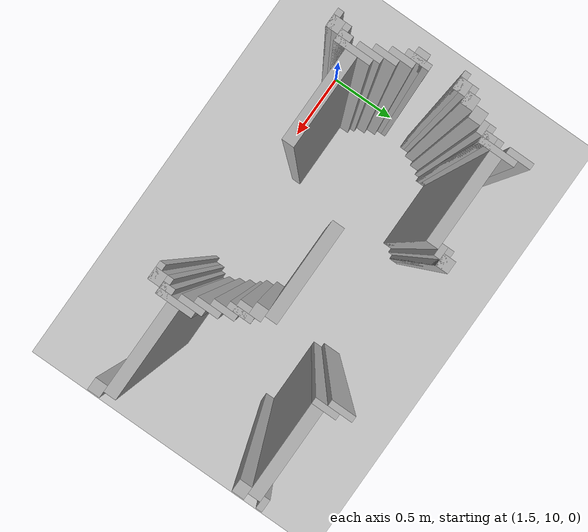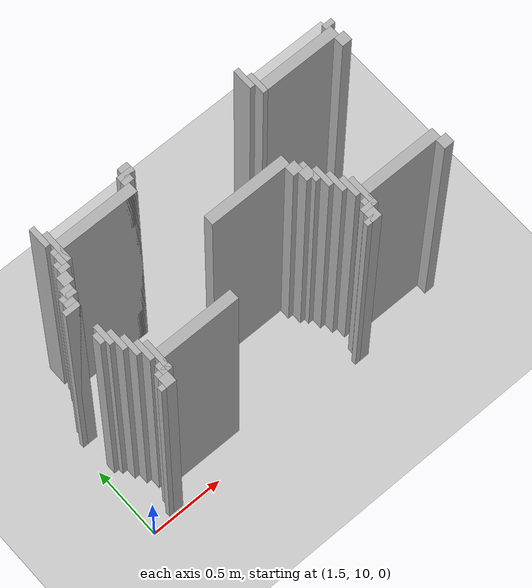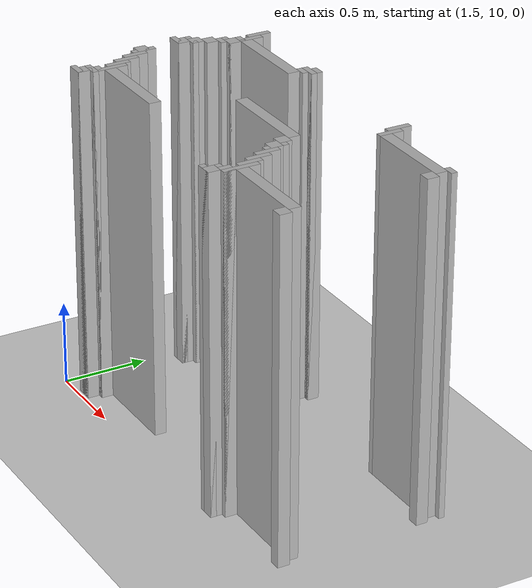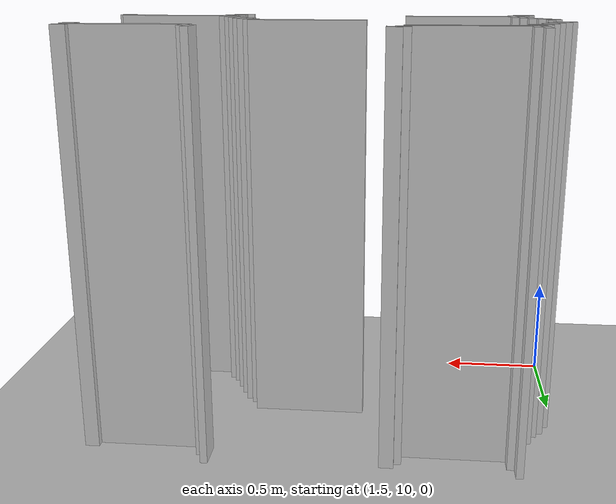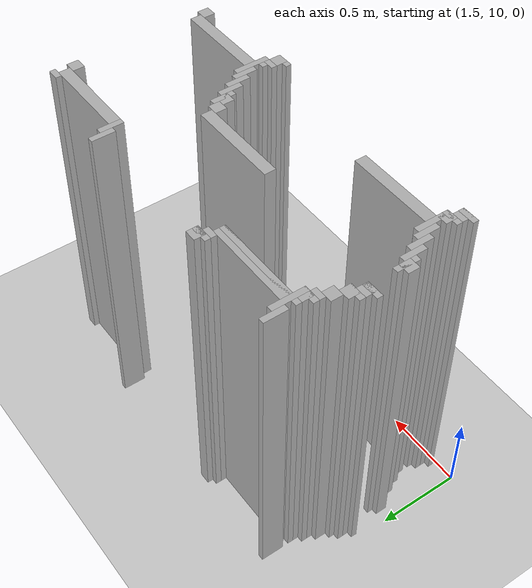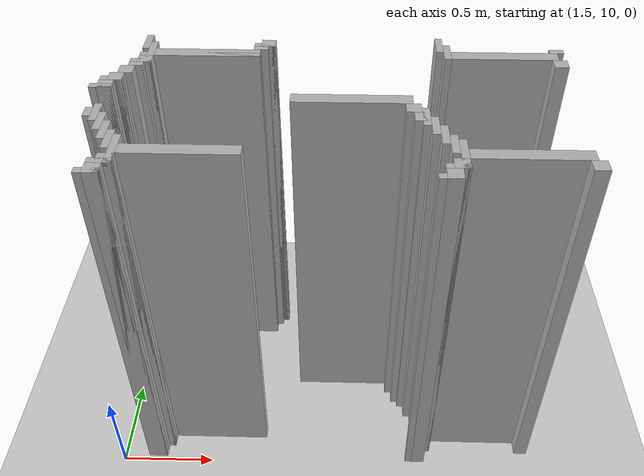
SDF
<sdf version="1.6">
 <world name="slam_world">
  <model name="ground_plane">
   <static>true</static>
   <link name="link">
    <collision name="collision">
     <geometry><plane><normal>0 0 1</normal><size>100 100</size></plane></geometry>
    </collision>
    <visual name="visual">
     <geometry><plane><normal>0 0 1</normal><size>100 100</size></plane></geometry>
     <material>
      <ambient>0.8 0.8 0.8 1</ambient>
      <diffuse>0.8 0.8 0.8 1</diffuse>
      <specular>0.8 0.8 0.8 1</specular>
     </material>
    </visual>
   </link>
  </model>
  <model name="wall_2127">
   <static>true</static>
   <pose>1.722737819025522 11.1368909512761 1.0 0 0 0</pose>
   <link name="link">
    <collision name="collision">
     <geometry><box><size>0.03480278422273782 0.13921113689095127 2.0</size></box></geometry>
    </collision>
    <visual name="visual">
     <geometry><box><size>0.03480278422273782 0.13921113689095127 2.0</size></box></geometry>
     <material><ambient>0.5 0.5 0.5 1</ambient><diffuse>0.7 0.7 0.7 1</diffuse></material>
    </visual>
   </link>
  </model>
  <model name="wall_2129">
   <static>true</static>
   <pose>3.1844547563805103 11.1368909512761 1.0 0 0 0</pose>
   <link name="link">
    <collision name="collision">
     <geometry><box><size>0.03480278422273782 0.13921113689095127 2.0</size></box></geometry>
    </collision>
    <visual name="visual">
     <geometry><box><size>0.03480278422273782 0.13921113689095127 2.0</size></box></geometry>
     <material><ambient>0.5 0.5 0.5 1</ambient><diffuse>0.7 0.7 0.7 1</diffuse></material>
    </visual>
   </link>
  </model>
  <model name="wall_2143">
   <static>true</static>
   <pose>2.331786542923434 11.1368909512761 1.0 0 0 0</pose>
   <link name="link">
    <collision name="collision">
     <geometry><box><size>0.06960556844547564 0.06960556844547564 2.0</size></box></geometry>
    </collision>
    <visual name="visual">
     <geometry><box><size>0.06960556844547564 0.06960556844547564 2.0</size></box></geometry>
     <material><ambient>0.5 0.5 0.5 1</ambient><diffuse>0.7 0.7 0.7 1</diffuse></material>
    </visual>
   </link>
  </model>
  <model name="wall_2151">
   <static>true</static>
   <pose>1.75754060324826 11.032482598607888 1.0 0 0 0</pose>
   <link name="link">
    <collision name="collision">
     <geometry><box><size>0.03480278422273782 0.2088167053364269 2.0</size></box></geometry>
    </collision>
    <visual name="visual">
     <geometry><box><size>0.03480278422273782 0.2088167053364269 2.0</size></box></geometry>
     <material><ambient>0.5 0.5 0.5 1</ambient><diffuse>0.7 0.7 0.7 1</diffuse></material>
    </visual>
   </link>
  </model>
  <model name="wall_2152">
   <static>true</static>
   <pose>2.3143851508120648 11.119489559164732 1.0 0 0 0</pose>
   <link name="link">
    <collision name="collision">
     <geometry><box><size>0.10440835266821345 0.03480278422273782 2.0</size></box></geometry>
    </collision>
    <visual name="visual">
     <geometry><box><size>0.10440835266821345 0.03480278422273782 2.0</size></box></geometry>
     <material><ambient>0.5 0.5 0.5 1</ambient><diffuse>0.7 0.7 0.7 1</diffuse></material>
    </visual>
   </link>
  </model>
  <model name="wall_2153">
   <static>true</static>
   <pose>3.219257540603248 11.067285382830626 1.0 0 0 0</pose>
   <link name="link">
    <collision name="collision">
     <geometry><box><size>0.03480278422273782 0.13921113689095127 2.0</size></box></geometry>
    </collision>
    <visual name="visual">
     <geometry><box><size>0.03480278422273782 0.13921113689095127 2.0</size></box></geometry>
     <material><ambient>0.5 0.5 0.5 1</ambient><diffuse>0.7 0.7 0.7 1</diffuse></material>
    </visual>
   </link>
  </model>
  <model name="wall_2167">
   <static>true</static>
   <pose>2.296983758700696 11.084686774941995 1.0 0 0 0</pose>
   <link name="link">
    <collision name="collision">
     <geometry><box><size>0.06960556844547564 0.03480278422273782 2.0</size></box></geometry>
    </collision>
    <visual name="visual">
     <geometry><box><size>0.06960556844547564 0.03480278422273782 2.0</size></box></geometry>
     <material><ambient>0.5 0.5 0.5 1</ambient><diffuse>0.7 0.7 0.7 1</diffuse></material>
    </visual>
   </link>
  </model>
  <model name="wall_2168">
   <static>true</static>
   <pose>3.7587006960556844 11.084686774941995 1.0 0 0 0</pose>
   <link name="link">
    <collision name="collision">
     <geometry><box><size>0.06960556844547564 0.03480278422273782 2.0</size></box></geometry>
    </collision>
    <visual name="visual">
     <geometry><box><size>0.06960556844547564 0.03480278422273782 2.0</size></box></geometry>
     <material><ambient>0.5 0.5 0.5 1</ambient><diffuse>0.7 0.7 0.7 1</diffuse></material>
    </visual>
   </link>
  </model>
  <model name="wall_2175">
   <static>true</static>
   <pose>2.0359628770301623 11.032482598607888 1.0 0 0 0</pose>
   <link name="link">
    <collision name="collision">
     <geometry><box><size>0.5220417633410672 0.06960556844547564 2.0</size></box></geometry>
    </collision>
    <visual name="visual">
     <geometry><box><size>0.5220417633410672 0.06960556844547564 2.0</size></box></geometry>
     <material><ambient>0.5 0.5 0.5 1</ambient><diffuse>0.7 0.7 0.7 1</diffuse></material>
    </visual>
   </link>
  </model>
  <model name="wall_2176">
   <static>true</static>
   <pose>3.4976798143851506 11.032482598607888 1.0 0 0 0</pose>
   <link name="link">
    <collision name="collision">
     <geometry><box><size>0.5220417633410672 0.06960556844547564 2.0</size></box></geometry>
    </collision>
    <visual name="visual">
     <geometry><box><size>0.5220417633410672 0.06960556844547564 2.0</size></box></geometry>
     <material><ambient>0.5 0.5 0.5 1</ambient><diffuse>0.7 0.7 0.7 1</diffuse></material>
    </visual>
   </link>
  </model>
  <model name="wall_2187">
   <static>true</static>
   <pose>2.0011600928074245 11.01508120649652 1.0 0 0 0</pose>
   <link name="link">
    <collision name="collision">
     <geometry><box><size>0.5916473317865429 0.03480278422273782 2.0</size></box></geometry>
    </collision>
    <visual name="visual">
     <geometry><box><size>0.5916473317865429 0.03480278422273782 2.0</size></box></geometry>
     <material><ambient>0.5 0.5 0.5 1</ambient><diffuse>0.7 0.7 0.7 1</diffuse></material>
    </visual>
   </link>
  </model>
  <model name="wall_2199">
   <static>true</static>
   <pose>1.740139211136891 10.962877030162412 1.0 0 0 0</pose>
   <link name="link">
    <collision name="collision">
     <geometry><box><size>0.06960556844547564 0.06960556844547564 2.0</size></box></geometry>
    </collision>
    <visual name="visual">
     <geometry><box><size>0.06960556844547564 0.06960556844547564 2.0</size></box></geometry>
     <material><ambient>0.5 0.5 0.5 1</ambient><diffuse>0.7 0.7 0.7 1</diffuse></material>
    </visual>
   </link>
  </model>
  <model name="wall_2200">
   <static>true</static>
   <pose>3.7587006960556844 10.962877030162412 1.0 0 0 0</pose>
   <link name="link">
    <collision name="collision">
     <geometry><box><size>0.06960556844547564 0.06960556844547564 2.0</size></box></geometry>
    </collision>
    <visual name="visual">
     <geometry><box><size>0.06960556844547564 0.06960556844547564 2.0</size></box></geometry>
     <material><ambient>0.5 0.5 0.5 1</ambient><diffuse>0.7 0.7 0.7 1</diffuse></material>
    </visual>
   </link>
  </model>
  <model name="wall_2211">
   <static>true</static>
   <pose>1.722737819025522 10.945475638051043 1.0 0 0 0</pose>
   <link name="link">
    <collision name="collision">
     <geometry><box><size>0.10440835266821345 0.03480278422273782 2.0</size></box></geometry>
    </collision>
    <visual name="visual">
     <geometry><box><size>0.10440835266821345 0.03480278422273782 2.0</size></box></geometry>
     <material><ambient>0.5 0.5 0.5 1</ambient><diffuse>0.7 0.7 0.7 1</diffuse></material>
    </visual>
   </link>
  </model>
  <model name="wall_2223">
   <static>true</static>
   <pose>1.705336426914153 10.910672853828306 1.0 0 0 0</pose>
   <link name="link">
    <collision name="collision">
     <geometry><box><size>0.06960556844547564 0.03480278422273782 2.0</size></box></geometry>
    </collision>
    <visual name="visual">
     <geometry><box><size>0.06960556844547564 0.03480278422273782 2.0</size></box></geometry>
     <material><ambient>0.5 0.5 0.5 1</ambient><diffuse>0.7 0.7 0.7 1</diffuse></material>
    </visual>
   </link>
  </model>
  <model name="wall_2230">
   <static>true</static>
   <pose>1.6705336426914152 10.8584686774942 1.0 0 0 0</pose>
   <link name="link">
    <collision name="collision">
     <geometry><box><size>0.06960556844547564 0.06960556844547564 2.0</size></box></geometry>
    </collision>
    <visual name="visual">
     <geometry><box><size>0.06960556844547564 0.06960556844547564 2.0</size></box></geometry>
     <material><ambient>0.5 0.5 0.5 1</ambient><diffuse>0.7 0.7 0.7 1</diffuse></material>
    </visual>
   </link>
  </model>
  <model name="wall_2242">
   <static>true</static>
   <pose>1.6357308584686774 10.788863109048723 1.0 0 0 0</pose>
   <link name="link">
    <collision name="collision">
     <geometry><box><size>0.06960556844547564 0.06960556844547564 2.0</size></box></geometry>
    </collision>
    <visual name="visual">
     <geometry><box><size>0.06960556844547564 0.06960556844547564 2.0</size></box></geometry>
     <material><ambient>0.5 0.5 0.5 1</ambient><diffuse>0.7 0.7 0.7 1</diffuse></material>
    </visual>
   </link>
  </model>
  <model name="wall_2254">
   <static>true</static>
   <pose>1.6183294663573085 10.771461716937354 1.0 0 0 0</pose>
   <link name="link">
    <collision name="collision">
     <geometry><box><size>0.10440835266821345 0.03480278422273782 2.0</size></box></geometry>
    </collision>
    <visual name="visual">
     <geometry><box><size>0.10440835266821345 0.03480278422273782 2.0</size></box></geometry>
     <material><ambient>0.5 0.5 0.5 1</ambient><diffuse>0.7 0.7 0.7 1</diffuse></material>
    </visual>
   </link>
  </model>
  <model name="wall_2265">
   <static>true</static>
   <pose>1.6009280742459395 10.719257540603248 1.0 0 0 0</pose>
   <link name="link">
    <collision name="collision">
     <geometry><box><size>0.06960556844547564 0.06960556844547564 2.0</size></box></geometry>
    </collision>
    <visual name="visual">
     <geometry><box><size>0.06960556844547564 0.06960556844547564 2.0</size></box></geometry>
     <material><ambient>0.5 0.5 0.5 1</ambient><diffuse>0.7 0.7 0.7 1</diffuse></material>
    </visual>
   </link>
  </model>
  <model name="wall_2272">
   <static>true</static>
   <pose>1.5835266821345706 10.70185614849188 1.0 0 0 0</pose>
   <link name="link">
    <collision name="collision">
     <geometry><box><size>0.10440835266821345 0.03480278422273782 2.0</size></box></geometry>
    </collision>
    <visual name="visual">
     <geometry><box><size>0.10440835266821345 0.03480278422273782 2.0</size></box></geometry>
     <material><ambient>0.5 0.5 0.5 1</ambient><diffuse>0.7 0.7 0.7 1</diffuse></material>
    </visual>
   </link>
  </model>
  <model name="wall_2291">
   <static>true</static>
   <pose>2.7494199535962878 10.614849187935034 1.0 0 0 0</pose>
   <link name="link">
    <collision name="collision">
     <geometry><box><size>0.5568445475638051 0.06960556844547564 2.0</size></box></geometry>
    </collision>
    <visual name="visual">
     <geometry><box><size>0.5568445475638051 0.06960556844547564 2.0</size></box></geometry>
     <material><ambient>0.5 0.5 0.5 1</ambient><diffuse>0.7 0.7 0.7 1</diffuse></material>
    </visual>
   </link>
  </model>
  <model name="wall_2303">
   <static>true</static>
   <pose>3.02784222737819 10.54524361948956 1.0 0 0 0</pose>
   <link name="link">
    <collision name="collision">
     <geometry><box><size>0.06960556844547564 0.06960556844547564 2.0</size></box></geometry>
    </collision>
    <visual name="visual">
     <geometry><box><size>0.06960556844547564 0.06960556844547564 2.0</size></box></geometry>
     <material><ambient>0.5 0.5 0.5 1</ambient><diffuse>0.7 0.7 0.7 1</diffuse></material>
    </visual>
   </link>
  </model>
  <model name="wall_2313">
   <static>true</static>
   <pose>1.6183294663573085 10.475638051044083 1.0 0 0 0</pose>
   <link name="link">
    <collision name="collision">
     <geometry><box><size>0.03480278422273782 0.13921113689095127 2.0</size></box></geometry>
    </collision>
    <visual name="visual">
     <geometry><box><size>0.03480278422273782 0.13921113689095127 2.0</size></box></geometry>
     <material><ambient>0.5 0.5 0.5 1</ambient><diffuse>0.7 0.7 0.7 1</diffuse></material>
    </visual>
   </link>
  </model>
  <model name="wall_2314">
   <static>true</static>
   <pose>3.0800464037122968 10.475638051044083 1.0 0 0 0</pose>
   <link name="link">
    <collision name="collision">
     <geometry><box><size>0.03480278422273782 0.13921113689095127 2.0</size></box></geometry>
    </collision>
    <visual name="visual">
     <geometry><box><size>0.03480278422273782 0.13921113689095127 2.0</size></box></geometry>
     <material><ambient>0.5 0.5 0.5 1</ambient><diffuse>0.7 0.7 0.7 1</diffuse></material>
    </visual>
   </link>
  </model>
  <model name="wall_2324">
   <static>true</static>
   <pose>1.6009280742459395 10.475638051044083 1.0 0 0 0</pose>
   <link name="link">
    <collision name="collision">
     <geometry><box><size>0.06960556844547564 0.06960556844547564 2.0</size></box></geometry>
    </collision>
    <visual name="visual">
     <geometry><box><size>0.06960556844547564 0.06960556844547564 2.0</size></box></geometry>
     <material><ambient>0.5 0.5 0.5 1</ambient><diffuse>0.7 0.7 0.7 1</diffuse></material>
    </visual>
   </link>
  </model>
  <model name="wall_2325">
   <static>true</static>
   <pose>3.062645011600928 10.475638051044083 1.0 0 0 0</pose>
   <link name="link">
    <collision name="collision">
     <geometry><box><size>0.06960556844547564 0.06960556844547564 2.0</size></box></geometry>
    </collision>
    <visual name="visual">
     <geometry><box><size>0.06960556844547564 0.06960556844547564 2.0</size></box></geometry>
     <material><ambient>0.5 0.5 0.5 1</ambient><diffuse>0.7 0.7 0.7 1</diffuse></material>
    </visual>
   </link>
  </model>
  <model name="wall_2335">
   <static>true</static>
   <pose>1.6531322505800463 10.406032482598608 1.0 0 0 0</pose>
   <link name="link">
    <collision name="collision">
     <geometry><box><size>0.03480278422273782 0.13921113689095127 2.0</size></box></geometry>
    </collision>
    <visual name="visual">
     <geometry><box><size>0.03480278422273782 0.13921113689095127 2.0</size></box></geometry>
     <material><ambient>0.5 0.5 0.5 1</ambient><diffuse>0.7 0.7 0.7 1</diffuse></material>
    </visual>
   </link>
  </model>
  <model name="wall_2336">
   <static>true</static>
   <pose>3.1148491879350346 10.406032482598608 1.0 0 0 0</pose>
   <link name="link">
    <collision name="collision">
     <geometry><box><size>0.03480278422273782 0.13921113689095127 2.0</size></box></geometry>
    </collision>
    <visual name="visual">
     <geometry><box><size>0.03480278422273782 0.13921113689095127 2.0</size></box></geometry>
     <material><ambient>0.5 0.5 0.5 1</ambient><diffuse>0.7 0.7 0.7 1</diffuse></material>
    </visual>
   </link>
  </model>
  <model name="wall_2351">
   <static>true</static>
   <pose>1.6879350348027842 10.336426914153131 1.0 0 0 0</pose>
   <link name="link">
    <collision name="collision">
     <geometry><box><size>0.03480278422273782 0.13921113689095127 2.0</size></box></geometry>
    </collision>
    <visual name="visual">
     <geometry><box><size>0.03480278422273782 0.13921113689095127 2.0</size></box></geometry>
     <material><ambient>0.5 0.5 0.5 1</ambient><diffuse>0.7 0.7 0.7 1</diffuse></material>
    </visual>
   </link>
  </model>
  <model name="wall_2352">
   <static>true</static>
   <pose>3.1496519721577725 10.336426914153131 1.0 0 0 0</pose>
   <link name="link">
    <collision name="collision">
     <geometry><box><size>0.03480278422273782 0.13921113689095127 2.0</size></box></geometry>
    </collision>
    <visual name="visual">
     <geometry><box><size>0.03480278422273782 0.13921113689095127 2.0</size></box></geometry>
     <material><ambient>0.5 0.5 0.5 1</ambient><diffuse>0.7 0.7 0.7 1</diffuse></material>
    </visual>
   </link>
  </model>
  <model name="wall_2362">
   <static>true</static>
   <pose>1.722737819025522 10.266821345707656 1.0 0 0 0</pose>
   <link name="link">
    <collision name="collision">
     <geometry><box><size>0.03480278422273782 0.13921113689095127 2.0</size></box></geometry>
    </collision>
    <visual name="visual">
     <geometry><box><size>0.03480278422273782 0.13921113689095127 2.0</size></box></geometry>
     <material><ambient>0.5 0.5 0.5 1</ambient><diffuse>0.7 0.7 0.7 1</diffuse></material>
    </visual>
   </link>
  </model>
  <model name="wall_2363">
   <static>true</static>
   <pose>3.1844547563805103 10.266821345707656 1.0 0 0 0</pose>
   <link name="link">
    <collision name="collision">
     <geometry><box><size>0.03480278422273782 0.13921113689095127 2.0</size></box></geometry>
    </collision>
    <visual name="visual">
     <geometry><box><size>0.03480278422273782 0.13921113689095127 2.0</size></box></geometry>
     <material><ambient>0.5 0.5 0.5 1</ambient><diffuse>0.7 0.7 0.7 1</diffuse></material>
    </visual>
   </link>
  </model>
  <model name="wall_2373">
   <static>true</static>
   <pose>1.75754060324826 10.19721577726218 1.0 0 0 0</pose>
   <link name="link">
    <collision name="collision">
     <geometry><box><size>0.03480278422273782 0.2088167053364269 2.0</size></box></geometry>
    </collision>
    <visual name="visual">
     <geometry><box><size>0.03480278422273782 0.2088167053364269 2.0</size></box></geometry>
     <material><ambient>0.5 0.5 0.5 1</ambient><diffuse>0.7 0.7 0.7 1</diffuse></material>
    </visual>
   </link>
  </model>
  <model name="wall_2374">
   <static>true</static>
   <pose>3.219257540603248 10.19721577726218 1.0 0 0 0</pose>
   <link name="link">
    <collision name="collision">
     <geometry><box><size>0.03480278422273782 0.2088167053364269 2.0</size></box></geometry>
    </collision>
    <visual name="visual">
     <geometry><box><size>0.03480278422273782 0.2088167053364269 2.0</size></box></geometry>
     <material><ambient>0.5 0.5 0.5 1</ambient><diffuse>0.7 0.7 0.7 1</diffuse></material>
    </visual>
   </link>
  </model>
  <model name="wall_2389">
   <static>true</static>
   <pose>2.0359628770301623 10.19721577726218 1.0 0 0 0</pose>
   <link name="link">
    <collision name="collision">
     <geometry><box><size>0.5220417633410672 0.06960556844547564 2.0</size></box></geometry>
    </collision>
    <visual name="visual">
     <geometry><box><size>0.5220417633410672 0.06960556844547564 2.0</size></box></geometry>
     <material><ambient>0.5 0.5 0.5 1</ambient><diffuse>0.7 0.7 0.7 1</diffuse></material>
    </visual>
   </link>
  </model>
  <model name="wall_2390">
   <static>true</static>
   <pose>3.4976798143851506 10.19721577726218 1.0 0 0 0</pose>
   <link name="link">
    <collision name="collision">
     <geometry><box><size>0.5220417633410672 0.06960556844547564 2.0</size></box></geometry>
    </collision>
    <visual name="visual">
     <geometry><box><size>0.5220417633410672 0.06960556844547564 2.0</size></box></geometry>
     <material><ambient>0.5 0.5 0.5 1</ambient><diffuse>0.7 0.7 0.7 1</diffuse></material>
    </visual>
   </link>
  </model>
  <model name="wall_2407">
   <static>true</static>
   <pose>1.740139211136891 10.127610208816705 1.0 0 0 0</pose>
   <link name="link">
    <collision name="collision">
     <geometry><box><size>0.06960556844547564 0.06960556844547564 2.0</size></box></geometry>
    </collision>
    <visual name="visual">
     <geometry><box><size>0.06960556844547564 0.06960556844547564 2.0</size></box></geometry>
     <material><ambient>0.5 0.5 0.5 1</ambient><diffuse>0.7 0.7 0.7 1</diffuse></material>
    </visual>
   </link>
  </model>
  <model name="wall_2408">
   <static>true</static>
   <pose>3.201856148491879 10.127610208816705 1.0 0 0 0</pose>
   <link name="link">
    <collision name="collision">
     <geometry><box><size>0.06960556844547564 0.06960556844547564 2.0</size></box></geometry>
    </collision>
    <visual name="visual">
     <geometry><box><size>0.06960556844547564 0.06960556844547564 2.0</size></box></geometry>
     <material><ambient>0.5 0.5 0.5 1</ambient><diffuse>0.7 0.7 0.7 1</diffuse></material>
    </visual>
   </link>
  </model>
  <model name="wall_2409">
   <static>true</static>
   <pose>3.7587006960556844 10.127610208816705 1.0 0 0 0</pose>
   <link name="link">
    <collision name="collision">
     <geometry><box><size>0.06960556844547564 0.06960556844547564 2.0</size></box></geometry>
    </collision>
    <visual name="visual">
     <geometry><box><size>0.06960556844547564 0.06960556844547564 2.0</size></box></geometry>
     <material><ambient>0.5 0.5 0.5 1</ambient><diffuse>0.7 0.7 0.7 1</diffuse></material>
    </visual>
   </link>
  </model>
  <model name="wall_2421">
   <static>true</static>
   <pose>1.722737819025522 10.110208816705336 1.0 0 0 0</pose>
   <link name="link">
    <collision name="collision">
     <geometry><box><size>0.10440835266821345 0.03480278422273782 2.0</size></box></geometry>
    </collision>
    <visual name="visual">
     <geometry><box><size>0.10440835266821345 0.03480278422273782 2.0</size></box></geometry>
     <material><ambient>0.5 0.5 0.5 1</ambient><diffuse>0.7 0.7 0.7 1</diffuse></material>
    </visual>
   </link>
  </model>
  <model name="wall_2422">
   <static>true</static>
   <pose>3.1844547563805103 10.110208816705336 1.0 0 0 0</pose>
   <link name="link">
    <collision name="collision">
     <geometry><box><size>0.10440835266821345 0.03480278422273782 2.0</size></box></geometry>
    </collision>
    <visual name="visual">
     <geometry><box><size>0.10440835266821345 0.03480278422273782 2.0</size></box></geometry>
     <material><ambient>0.5 0.5 0.5 1</ambient><diffuse>0.7 0.7 0.7 1</diffuse></material>
    </visual>
   </link>
  </model>
  <model name="wall_2435">
   <static>true</static>
   <pose>1.705336426914153 10.058004640371228 1.0 0 0 0</pose>
   <link name="link">
    <collision name="collision">
     <geometry><box><size>0.06960556844547564 0.06960556844547564 2.0</size></box></geometry>
    </collision>
    <visual name="visual">
     <geometry><box><size>0.06960556844547564 0.06960556844547564 2.0</size></box></geometry>
     <material><ambient>0.5 0.5 0.5 1</ambient><diffuse>0.7 0.7 0.7 1</diffuse></material>
    </visual>
   </link>
  </model>
  <model name="wall_2436">
   <static>true</static>
   <pose>3.167053364269141 10.058004640371228 1.0 0 0 0</pose>
   <link name="link">
    <collision name="collision">
     <geometry><box><size>0.06960556844547564 0.06960556844547564 2.0</size></box></geometry>
    </collision>
    <visual name="visual">
     <geometry><box><size>0.06960556844547564 0.06960556844547564 2.0</size></box></geometry>
     <material><ambient>0.5 0.5 0.5 1</ambient><diffuse>0.7 0.7 0.7 1</diffuse></material>
    </visual>
   </link>
  </model>
  <model name="wall_2449">
   <static>true</static>
   <pose>1.6879350348027842 10.04060324825986 1.0 0 0 0</pose>
   <link name="link">
    <collision name="collision">
     <geometry><box><size>0.10440835266821345 0.03480278422273782 2.0</size></box></geometry>
    </collision>
    <visual name="visual">
     <geometry><box><size>0.10440835266821345 0.03480278422273782 2.0</size></box></geometry>
     <material><ambient>0.5 0.5 0.5 1</ambient><diffuse>0.7 0.7 0.7 1</diffuse></material>
    </visual>
   </link>
  </model>
  <model name="wall_2450">
   <static>true</static>
   <pose>3.1496519721577725 10.04060324825986 1.0 0 0 0</pose>
   <link name="link">
    <collision name="collision">
     <geometry><box><size>0.10440835266821345 0.03480278422273782 2.0</size></box></geometry>
    </collision>
    <visual name="visual">
     <geometry><box><size>0.10440835266821345 0.03480278422273782 2.0</size></box></geometry>
     <material><ambient>0.5 0.5 0.5 1</ambient><diffuse>0.7 0.7 0.7 1</diffuse></material>
    </visual>
   </link>
  </model>
 </world>
</sdf>
